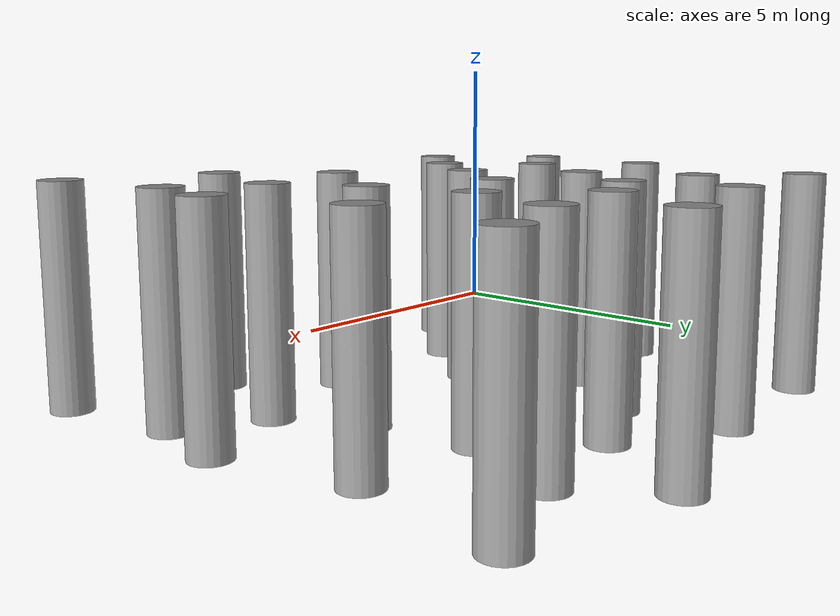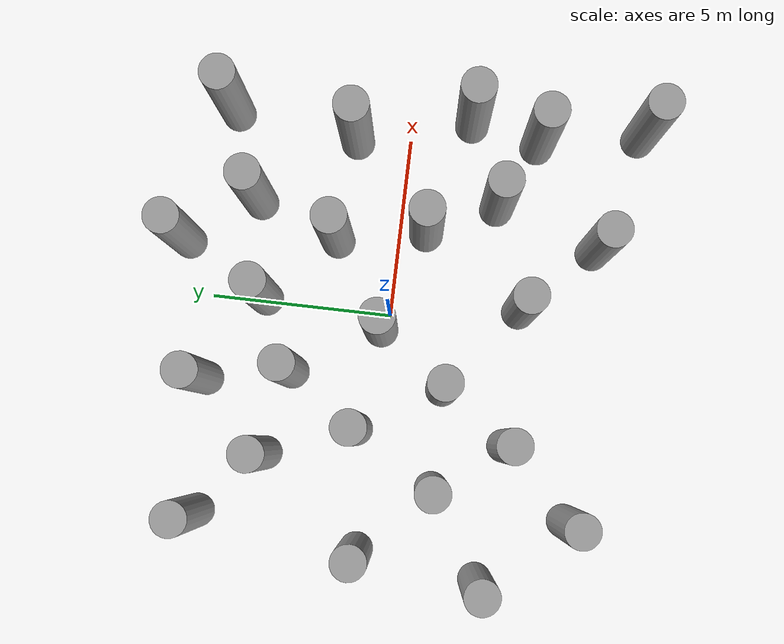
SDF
<?xml version='1.0'?>
<sdf version='1.7'>
  <model name='obstacle_complex'>
    <link name='link_0'>
      <inertial>
        <mass>5.29129</mass>
        <inertia>
          <ixx>12.6759</ixx>
          <ixy>0</ixy>
          <ixz>0</ixz>
          <iyy>12.6759</iyy>
          <iyz>0</iyz>
          <izz>0.661411</izz>
        </inertia>
        <pose>0 0 0 0 -0 0</pose>
      </inertial>
      <pose>-6.15295 5.08979 0 0 -0 0</pose>
      <visual name='visual'>
        <pose>0 0 0 0 -0 0</pose>
        <geometry>
          <cylinder>
            <radius>0.5</radius>
            <length>5.29126</length>
          </cylinder>
        </geometry>
        <material>
          <lighting>1</lighting>
          <script>
            <uri>file://media/materials/scripts/gazebo.material</uri>
            <name>Gazebo/Grey</name>
          </script>
          <shader type='pixel'/>
        </material>
        <transparency>0</transparency>
        <cast_shadows>1</cast_shadows>
      </visual>
      <collision name='collision'>
        <laser_retro>0</laser_retro>
        <max_contacts>10</max_contacts>
        <pose>0 0 0 0 -0 0</pose>
        <geometry>
          <cylinder>
            <radius>0.5</radius>
            <length>5.29126</length>
          </cylinder>
        </geometry>
        <surface>
          <friction>
            <ode>
              <mu>1</mu>
              <mu2>1</mu2>
              <fdir1>0 0 0</fdir1>
              <slip1>0</slip1>
              <slip2>0</slip2>
            </ode>
            <torsional>
              <coefficient>1</coefficient>
              <patch_radius>0</patch_radius>
              <surface_radius>0</surface_radius>
              <use_patch_radius>1</use_patch_radius>
              <ode>
                <slip>0</slip>
              </ode>
            </torsional>
          </friction>
          <bounce>
            <restitution_coefficient>0</restitution_coefficient>
            <threshold>1e+06</threshold>
          </bounce>
          <contact>
            <collide_without_contact>0</collide_without_contact>
            <collide_without_contact_bitmask>1</collide_without_contact_bitmask>
            <collide_bitmask>1</collide_bitmask>
            <ode>
              <soft_cfm>0</soft_cfm>
              <soft_erp>0.2</soft_erp>
              <kp>1e+13</kp>
              <kd>1</kd>
              <max_vel>0.01</max_vel>
              <min_depth>0</min_depth>
            </ode>
            <bullet>
              <split_impulse>1</split_impulse>
              <split_impulse_penetration_threshold>-0.01</split_impulse_penetration_threshold>
              <soft_cfm>0</soft_cfm>
              <soft_erp>0.2</soft_erp>
              <kp>1e+13</kp>
              <kd>1</kd>
            </bullet>
          </contact>
        </surface>
      </collision>
    </link>
    <link name='link_0_clone'>
      <inertial>
        <mass>5.29129</mass>
        <inertia>
          <ixx>12.6759</ixx>
          <ixy>0</ixy>
          <ixz>0</ixz>
          <iyy>12.6759</iyy>
          <iyz>0</iyz>
          <izz>0.661411</izz>
        </inertia>
        <pose>0 0 0 0 -0 0</pose>
      </inertial>
      <pose>-4.24123 3.2981 0 0 -0 0</pose>
      <visual name='visual'>
        <pose>0 0 0 0 -0 0</pose>
        <geometry>
          <cylinder>
            <radius>0.5</radius>
            <length>5.29126</length>
          </cylinder>
        </geometry>
        <material>
          <lighting>1</lighting>
          <script>
            <uri>file://media/materials/scripts/gazebo.material</uri>
            <name>Gazebo/Grey</name>
          </script>
          <shader type='pixel'/>
        </material>
        <transparency>0</transparency>
        <cast_shadows>1</cast_shadows>
      </visual>
      <collision name='collision'>
        <laser_retro>0</laser_retro>
        <max_contacts>10</max_contacts>
        <pose>0 0 0 0 -0 0</pose>
        <geometry>
          <cylinder>
            <radius>0.5</radius>
            <length>5.29126</length>
          </cylinder>
        </geometry>
        <surface>
          <friction>
            <ode>
              <mu>1</mu>
              <mu2>1</mu2>
              <fdir1>0 0 0</fdir1>
              <slip1>0</slip1>
              <slip2>0</slip2>
            </ode>
            <torsional>
              <coefficient>1</coefficient>
              <patch_radius>0</patch_radius>
              <surface_radius>0</surface_radius>
              <use_patch_radius>1</use_patch_radius>
              <ode>
                <slip>0</slip>
              </ode>
            </torsional>
          </friction>
          <bounce>
            <restitution_coefficient>0</restitution_coefficient>
            <threshold>1e+06</threshold>
          </bounce>
          <contact>
            <collide_without_contact>0</collide_without_contact>
            <collide_without_contact_bitmask>1</collide_without_contact_bitmask>
            <collide_bitmask>1</collide_bitmask>
            <ode>
              <soft_cfm>0</soft_cfm>
              <soft_erp>0.2</soft_erp>
              <kp>1e+13</kp>
              <kd>1</kd>
              <max_vel>0.01</max_vel>
              <min_depth>0</min_depth>
            </ode>
            <bullet>
              <split_impulse>1</split_impulse>
              <split_impulse_penetration_threshold>-0.01</split_impulse_penetration_threshold>
              <soft_cfm>0</soft_cfm>
              <soft_erp>0.2</soft_erp>
              <kp>1e+13</kp>
              <kd>1</kd>
            </bullet>
          </contact>
        </surface>
      </collision>
    </link>
    <link name='link_0_clone_0'>
      <inertial>
        <mass>5.29129</mass>
        <inertia>
          <ixx>12.6759</ixx>
          <ixy>0</ixy>
          <ixz>0</ixz>
          <iyy>12.6759</iyy>
          <iyz>0</iyz>
          <izz>0.661411</izz>
        </inertia>
        <pose>0 0 0 0 -0 0</pose>
      </inertial>
      <pose>-2.24123 5.2981 0 0 -0 0</pose>
      <visual name='visual'>
        <pose>0 0 0 0 -0 0</pose>
        <geometry>
          <cylinder>
            <radius>0.5</radius>
            <length>5.29126</length>
          </cylinder>
        </geometry>
        <material>
          <lighting>1</lighting>
          <script>
            <uri>file://media/materials/scripts/gazebo.material</uri>
            <name>Gazebo/Grey</name>
          </script>
          <shader type='pixel'/>
        </material>
        <transparency>0</transparency>
        <cast_shadows>1</cast_shadows>
      </visual>
      <collision name='collision'>
        <laser_retro>0</laser_retro>
        <max_contacts>10</max_contacts>
        <pose>0 0 0 0 -0 0</pose>
        <geometry>
          <cylinder>
            <radius>0.5</radius>
            <length>5.29126</length>
          </cylinder>
        </geometry>
        <surface>
          <friction>
            <ode>
              <mu>1</mu>
              <mu2>1</mu2>
              <fdir1>0 0 0</fdir1>
              <slip1>0</slip1>
              <slip2>0</slip2>
            </ode>
            <torsional>
              <coefficient>1</coefficient>
              <patch_radius>0</patch_radius>
              <surface_radius>0</surface_radius>
              <use_patch_radius>1</use_patch_radius>
              <ode>
                <slip>0</slip>
              </ode>
            </torsional>
          </friction>
          <bounce>
            <restitution_coefficient>0</restitution_coefficient>
            <threshold>1e+06</threshold>
          </bounce>
          <contact>
            <collide_without_contact>0</collide_without_contact>
            <collide_without_contact_bitmask>1</collide_without_contact_bitmask>
            <collide_bitmask>1</collide_bitmask>
            <ode>
              <soft_cfm>0</soft_cfm>
              <soft_erp>0.2</soft_erp>
              <kp>1e+13</kp>
              <kd>1</kd>
              <max_vel>0.01</max_vel>
              <min_depth>0</min_depth>
            </ode>
            <bullet>
              <split_impulse>1</split_impulse>
              <split_impulse_penetration_threshold>-0.01</split_impulse_penetration_threshold>
              <soft_cfm>0</soft_cfm>
              <soft_erp>0.2</soft_erp>
              <kp>1e+13</kp>
              <kd>1</kd>
            </bullet>
          </contact>
        </surface>
      </collision>
    </link>
    <link name='link_0_clone_1'>
      <inertial>
        <mass>5.29129</mass>
        <inertia>
          <ixx>12.6759</ixx>
          <ixy>0</ixy>
          <ixz>0</ixz>
          <iyy>12.6759</iyy>
          <iyz>0</iyz>
          <izz>0.661411</izz>
        </inertia>
        <pose>0 0 0 0 -0 0</pose>
      </inertial>
      <pose>-0.241233 0.298101 0 0 -0 0</pose>
      <visual name='visual'>
        <pose>0 0 0 0 -0 0</pose>
        <geometry>
          <cylinder>
            <radius>0.5</radius>
            <length>5.29126</length>
          </cylinder>
        </geometry>
        <material>
          <lighting>1</lighting>
          <script>
            <uri>file://media/materials/scripts/gazebo.material</uri>
            <name>Gazebo/Grey</name>
          </script>
          <shader type='pixel'/>
        </material>
        <transparency>0</transparency>
        <cast_shadows>1</cast_shadows>
      </visual>
      <collision name='collision'>
        <laser_retro>0</laser_retro>
        <max_contacts>10</max_contacts>
        <pose>0 0 0 0 -0 0</pose>
        <geometry>
          <cylinder>
            <radius>0.5</radius>
            <length>5.29126</length>
          </cylinder>
        </geometry>
        <surface>
          <friction>
            <ode>
              <mu>1</mu>
              <mu2>1</mu2>
              <fdir1>0 0 0</fdir1>
              <slip1>0</slip1>
              <slip2>0</slip2>
            </ode>
            <torsional>
              <coefficient>1</coefficient>
              <patch_radius>0</patch_radius>
              <surface_radius>0</surface_radius>
              <use_patch_radius>1</use_patch_radius>
              <ode>
                <slip>0</slip>
              </ode>
            </torsional>
          </friction>
          <bounce>
            <restitution_coefficient>0</restitution_coefficient>
            <threshold>1e+06</threshold>
          </bounce>
          <contact>
            <collide_without_contact>0</collide_without_contact>
            <collide_without_contact_bitmask>1</collide_without_contact_bitmask>
            <collide_bitmask>1</collide_bitmask>
            <ode>
              <soft_cfm>0</soft_cfm>
              <soft_erp>0.2</soft_erp>
              <kp>1e+13</kp>
              <kd>1</kd>
              <max_vel>0.01</max_vel>
              <min_depth>0</min_depth>
            </ode>
            <bullet>
              <split_impulse>1</split_impulse>
              <split_impulse_penetration_threshold>-0.01</split_impulse_penetration_threshold>
              <soft_cfm>0</soft_cfm>
              <soft_erp>0.2</soft_erp>
              <kp>1e+13</kp>
              <kd>1</kd>
            </bullet>
          </contact>
        </surface>
      </collision>
    </link>
    <link name='link_0_clone_10'>
      <inertial>
        <mass>5.29129</mass>
        <inertia>
          <ixx>12.6759</ixx>
          <ixy>0</ixy>
          <ixz>0</ixz>
          <iyy>12.6759</iyy>
          <iyz>0</iyz>
          <izz>0.661411</izz>
        </inertia>
        <pose>0 0 0 0 -0 0</pose>
      </inertial>
      <pose>-1.79235 -1.7019 0 0 -0 0</pose>
      <visual name='visual'>
        <pose>0 0 0 0 -0 0</pose>
        <geometry>
          <cylinder>
            <radius>0.5</radius>
            <length>5.29126</length>
          </cylinder>
        </geometry>
        <material>
          <lighting>1</lighting>
          <script>
            <uri>file://media/materials/scripts/gazebo.material</uri>
            <name>Gazebo/Grey</name>
          </script>
          <shader type='pixel'/>
        </material>
        <transparency>0</transparency>
        <cast_shadows>1</cast_shadows>
      </visual>
      <collision name='collision'>
        <laser_retro>0</laser_retro>
        <max_contacts>10</max_contacts>
        <pose>0 0 0 0 -0 0</pose>
        <geometry>
          <cylinder>
            <radius>0.5</radius>
            <length>5.29126</length>
          </cylinder>
        </geometry>
        <surface>
          <friction>
            <ode>
              <mu>1</mu>
              <mu2>1</mu2>
              <fdir1>0 0 0</fdir1>
              <slip1>0</slip1>
              <slip2>0</slip2>
            </ode>
            <torsional>
              <coefficient>1</coefficient>
              <patch_radius>0</patch_radius>
              <surface_radius>0</surface_radius>
              <use_patch_radius>1</use_patch_radius>
              <ode>
                <slip>0</slip>
              </ode>
            </torsional>
          </friction>
          <bounce>
            <restitution_coefficient>0</restitution_coefficient>
            <threshold>1e+06</threshold>
          </bounce>
          <contact>
            <collide_without_contact>0</collide_without_contact>
            <collide_without_contact_bitmask>1</collide_without_contact_bitmask>
            <collide_bitmask>1</collide_bitmask>
            <ode>
              <soft_cfm>0</soft_cfm>
              <soft_erp>0.2</soft_erp>
              <kp>1e+13</kp>
              <kd>1</kd>
              <max_vel>0.01</max_vel>
              <min_depth>0</min_depth>
            </ode>
            <bullet>
              <split_impulse>1</split_impulse>
              <split_impulse_penetration_threshold>-0.01</split_impulse_penetration_threshold>
              <soft_cfm>0</soft_cfm>
              <soft_erp>0.2</soft_erp>
              <kp>1e+13</kp>
              <kd>1</kd>
            </bullet>
          </contact>
        </surface>
      </collision>
    </link>
    <link name='link_0_clone_11'>
      <inertial>
        <mass>5.29129</mass>
        <inertia>
          <ixx>12.6759</ixx>
          <ixy>0</ixy>
          <ixz>0</ixz>
          <iyy>12.6759</iyy>
          <iyz>0</iyz>
          <izz>0.661411</izz>
        </inertia>
        <pose>0 0 0 0 -0 0</pose>
      </inertial>
      <pose>-3.24123 -3.7019 0 0 -0 0</pose>
      <visual name='visual'>
        <pose>0 0 0 0 -0 0</pose>
        <geometry>
          <cylinder>
            <radius>0.5</radius>
            <length>5.29126</length>
          </cylinder>
        </geometry>
        <material>
          <lighting>1</lighting>
          <script>
            <uri>file://media/materials/scripts/gazebo.material</uri>
            <name>Gazebo/Grey</name>
          </script>
          <shader type='pixel'/>
        </material>
        <transparency>0</transparency>
        <cast_shadows>1</cast_shadows>
      </visual>
      <collision name='collision'>
        <laser_retro>0</laser_retro>
        <max_contacts>10</max_contacts>
        <pose>0 0 0 0 -0 0</pose>
        <geometry>
          <cylinder>
            <radius>0.5</radius>
            <length>5.29126</length>
          </cylinder>
        </geometry>
        <surface>
          <friction>
            <ode>
              <mu>1</mu>
              <mu2>1</mu2>
              <fdir1>0 0 0</fdir1>
              <slip1>0</slip1>
              <slip2>0</slip2>
            </ode>
            <torsional>
              <coefficient>1</coefficient>
              <patch_radius>0</patch_radius>
              <surface_radius>0</surface_radius>
              <use_patch_radius>1</use_patch_radius>
              <ode>
                <slip>0</slip>
              </ode>
            </torsional>
          </friction>
          <bounce>
            <restitution_coefficient>0</restitution_coefficient>
            <threshold>1e+06</threshold>
          </bounce>
          <contact>
            <collide_without_contact>0</collide_without_contact>
            <collide_without_contact_bitmask>1</collide_without_contact_bitmask>
            <collide_bitmask>1</collide_bitmask>
            <ode>
              <soft_cfm>0</soft_cfm>
              <soft_erp>0.2</soft_erp>
              <kp>1e+13</kp>
              <kd>1</kd>
              <max_vel>0.01</max_vel>
              <min_depth>0</min_depth>
            </ode>
            <bullet>
              <split_impulse>1</split_impulse>
              <split_impulse_penetration_threshold>-0.01</split_impulse_penetration_threshold>
              <soft_cfm>0</soft_cfm>
              <soft_erp>0.2</soft_erp>
              <kp>1e+13</kp>
              <kd>1</kd>
            </bullet>
          </contact>
        </surface>
      </collision>
    </link>
    <link name='link_0_clone_12'>
      <inertial>
        <mass>5.29129</mass>
        <inertia>
          <ixx>12.6759</ixx>
          <ixy>0</ixy>
          <ixz>0</ixz>
          <iyy>12.6759</iyy>
          <iyz>0</iyz>
          <izz>0.661411</izz>
        </inertia>
        <pose>0 0 0 0 -0 0</pose>
      </inertial>
      <pose>0.758767 -3.7019 0 0 -0 0</pose>
      <visual name='visual'>
        <pose>0 0 0 0 -0 0</pose>
        <geometry>
          <cylinder>
            <radius>0.5</radius>
            <length>5.29126</length>
          </cylinder>
        </geometry>
        <material>
          <lighting>1</lighting>
          <script>
            <uri>file://media/materials/scripts/gazebo.material</uri>
            <name>Gazebo/Grey</name>
          </script>
          <shader type='pixel'/>
        </material>
        <transparency>0</transparency>
        <cast_shadows>1</cast_shadows>
      </visual>
      <collision name='collision'>
        <laser_retro>0</laser_retro>
        <max_contacts>10</max_contacts>
        <pose>0 0 0 0 -0 0</pose>
        <geometry>
          <cylinder>
            <radius>0.5</radius>
            <length>5.29126</length>
          </cylinder>
        </geometry>
        <surface>
          <friction>
            <ode>
              <mu>1</mu>
              <mu2>1</mu2>
              <fdir1>0 0 0</fdir1>
              <slip1>0</slip1>
              <slip2>0</slip2>
            </ode>
            <torsional>
              <coefficient>1</coefficient>
              <patch_radius>0</patch_radius>
              <surface_radius>0</surface_radius>
              <use_patch_radius>1</use_patch_radius>
              <ode>
                <slip>0</slip>
              </ode>
            </torsional>
          </friction>
          <bounce>
            <restitution_coefficient>0</restitution_coefficient>
            <threshold>1e+06</threshold>
          </bounce>
          <contact>
            <collide_without_contact>0</collide_without_contact>
            <collide_without_contact_bitmask>1</collide_without_contact_bitmask>
            <collide_bitmask>1</collide_bitmask>
            <ode>
              <soft_cfm>0</soft_cfm>
              <soft_erp>0.2</soft_erp>
              <kp>1e+13</kp>
              <kd>1</kd>
              <max_vel>0.01</max_vel>
              <min_depth>0</min_depth>
            </ode>
            <bullet>
              <split_impulse>1</split_impulse>
              <split_impulse_penetration_threshold>-0.01</split_impulse_penetration_threshold>
              <soft_cfm>0</soft_cfm>
              <soft_erp>0.2</soft_erp>
              <kp>1e+13</kp>
              <kd>1</kd>
            </bullet>
          </contact>
        </surface>
      </collision>
    </link>
    <link name='link_0_clone_13'>
      <inertial>
        <mass>5.29129</mass>
        <inertia>
          <ixx>12.6759</ixx>
          <ixy>0</ixy>
          <ixz>0</ixz>
          <iyy>12.6759</iyy>
          <iyz>0</iyz>
          <izz>0.661411</izz>
        </inertia>
        <pose>0 0 0 0 -0 0</pose>
      </inertial>
      <pose>2.75877 -0.701899 0 0 -0 0</pose>
      <visual name='visual'>
        <pose>0 0 0 0 -0 0</pose>
        <geometry>
          <cylinder>
            <radius>0.5</radius>
            <length>5.29126</length>
          </cylinder>
        </geometry>
        <material>
          <lighting>1</lighting>
          <script>
            <uri>file://media/materials/scripts/gazebo.material</uri>
            <name>Gazebo/Grey</name>
          </script>
          <shader type='pixel'/>
        </material>
        <transparency>0</transparency>
        <cast_shadows>1</cast_shadows>
      </visual>
      <collision name='collision'>
        <laser_retro>0</laser_retro>
        <max_contacts>10</max_contacts>
        <pose>0 0 0 0 -0 0</pose>
        <geometry>
          <cylinder>
            <radius>0.5</radius>
            <length>5.29126</length>
          </cylinder>
        </geometry>
        <surface>
          <friction>
            <ode>
              <mu>1</mu>
              <mu2>1</mu2>
              <fdir1>0 0 0</fdir1>
              <slip1>0</slip1>
              <slip2>0</slip2>
            </ode>
            <torsional>
              <coefficient>1</coefficient>
              <patch_radius>0</patch_radius>
              <surface_radius>0</surface_radius>
              <use_patch_radius>1</use_patch_radius>
              <ode>
                <slip>0</slip>
              </ode>
            </torsional>
          </friction>
          <bounce>
            <restitution_coefficient>0</restitution_coefficient>
            <threshold>1e+06</threshold>
          </bounce>
          <contact>
            <collide_without_contact>0</collide_without_contact>
            <collide_without_contact_bitmask>1</collide_without_contact_bitmask>
            <collide_bitmask>1</collide_bitmask>
            <ode>
              <soft_cfm>0</soft_cfm>
              <soft_erp>0.2</soft_erp>
              <kp>1e+13</kp>
              <kd>1</kd>
              <max_vel>0.01</max_vel>
              <min_depth>0</min_depth>
            </ode>
            <bullet>
              <split_impulse>1</split_impulse>
              <split_impulse_penetration_threshold>-0.01</split_impulse_penetration_threshold>
              <soft_cfm>0</soft_cfm>
              <soft_erp>0.2</soft_erp>
              <kp>1e+13</kp>
              <kd>1</kd>
            </bullet>
          </contact>
        </surface>
      </collision>
    </link>
    <link name='link_0_clone_14'>
      <inertial>
        <mass>5.29129</mass>
        <inertia>
          <ixx>12.6759</ixx>
          <ixy>0</ixy>
          <ixz>0</ixz>
          <iyy>12.6759</iyy>
          <iyz>0</iyz>
          <izz>0.661411</izz>
        </inertia>
        <pose>0 0 0 0 -0 0</pose>
      </inertial>
      <pose>5.30897 1.64469 0 0 -0 0</pose>
      <visual name='visual'>
        <pose>0 0 0 0 -0 0</pose>
        <geometry>
          <cylinder>
            <radius>0.5</radius>
            <length>5.29126</length>
          </cylinder>
        </geometry>
        <material>
          <lighting>1</lighting>
          <script>
            <uri>file://media/materials/scripts/gazebo.material</uri>
            <name>Gazebo/Grey</name>
          </script>
          <shader type='pixel'/>
        </material>
        <transparency>0</transparency>
        <cast_shadows>1</cast_shadows>
      </visual>
      <collision name='collision'>
        <laser_retro>0</laser_retro>
        <max_contacts>10</max_contacts>
        <pose>0 0 0 0 -0 0</pose>
        <geometry>
          <cylinder>
            <radius>0.5</radius>
            <length>5.29126</length>
          </cylinder>
        </geometry>
        <surface>
          <friction>
            <ode>
              <mu>1</mu>
              <mu2>1</mu2>
              <fdir1>0 0 0</fdir1>
              <slip1>0</slip1>
              <slip2>0</slip2>
            </ode>
            <torsional>
              <coefficient>1</coefficient>
              <patch_radius>0</patch_radius>
              <surface_radius>0</surface_radius>
              <use_patch_radius>1</use_patch_radius>
              <ode>
                <slip>0</slip>
              </ode>
            </torsional>
          </friction>
          <bounce>
            <restitution_coefficient>0</restitution_coefficient>
            <threshold>1e+06</threshold>
          </bounce>
          <contact>
            <collide_without_contact>0</collide_without_contact>
            <collide_without_contact_bitmask>1</collide_without_contact_bitmask>
            <collide_bitmask>1</collide_bitmask>
            <ode>
              <soft_cfm>0</soft_cfm>
              <soft_erp>0.2</soft_erp>
              <kp>1e+13</kp>
              <kd>1</kd>
              <max_vel>0.01</max_vel>
              <min_depth>0</min_depth>
            </ode>
            <bullet>
              <split_impulse>1</split_impulse>
              <split_impulse_penetration_threshold>-0.01</split_impulse_penetration_threshold>
              <soft_cfm>0</soft_cfm>
              <soft_erp>0.2</soft_erp>
              <kp>1e+13</kp>
              <kd>1</kd>
            </bullet>
          </contact>
        </surface>
      </collision>
    </link>
    <link name='link_0_clone_15'>
      <inertial>
        <mass>5.29129</mass>
        <inertia>
          <ixx>12.6759</ixx>
          <ixy>0</ixy>
          <ixz>0</ixz>
          <iyy>12.6759</iyy>
          <iyz>0</iyz>
          <izz>0.661411</izz>
        </inertia>
        <pose>0 0 0 0 -0 0</pose>
      </inertial>
      <pose>2.26622 1.88148 0 0 -0 0</pose>
      <visual name='visual'>
        <pose>0 0 0 0 -0 0</pose>
        <geometry>
          <cylinder>
            <radius>0.5</radius>
            <length>5.29126</length>
          </cylinder>
        </geometry>
        <material>
          <lighting>1</lighting>
          <script>
            <uri>file://media/materials/scripts/gazebo.material</uri>
            <name>Gazebo/Grey</name>
          </script>
          <shader type='pixel'/>
        </material>
        <transparency>0</transparency>
        <cast_shadows>1</cast_shadows>
      </visual>
      <collision name='collision'>
        <laser_retro>0</laser_retro>
        <max_contacts>10</max_contacts>
        <pose>0 0 0 0 -0 0</pose>
        <geometry>
          <cylinder>
            <radius>0.5</radius>
            <length>5.29126</length>
          </cylinder>
        </geometry>
        <surface>
          <friction>
            <ode>
              <mu>1</mu>
              <mu2>1</mu2>
              <fdir1>0 0 0</fdir1>
              <slip1>0</slip1>
              <slip2>0</slip2>
            </ode>
            <torsional>
              <coefficient>1</coefficient>
              <patch_radius>0</patch_radius>
              <surface_radius>0</surface_radius>
              <use_patch_radius>1</use_patch_radius>
              <ode>
                <slip>0</slip>
              </ode>
            </torsional>
          </friction>
          <bounce>
            <restitution_coefficient>0</restitution_coefficient>
            <threshold>1e+06</threshold>
          </bounce>
          <contact>
            <collide_without_contact>0</collide_without_contact>
            <collide_without_contact_bitmask>1</collide_without_contact_bitmask>
            <collide_bitmask>1</collide_bitmask>
            <ode>
              <soft_cfm>0</soft_cfm>
              <soft_erp>0.2</soft_erp>
              <kp>1e+13</kp>
              <kd>1</kd>
              <max_vel>0.01</max_vel>
              <min_depth>0</min_depth>
            </ode>
            <bullet>
              <split_impulse>1</split_impulse>
              <split_impulse_penetration_threshold>-0.01</split_impulse_penetration_threshold>
              <soft_cfm>0</soft_cfm>
              <soft_erp>0.2</soft_erp>
              <kp>1e+13</kp>
              <kd>1</kd>
            </bullet>
          </contact>
        </surface>
      </collision>
    </link>
    <link name='link_0_clone_16'>
      <inertial>
        <mass>5.29129</mass>
        <inertia>
          <ixx>12.6759</ixx>
          <ixy>0</ixy>
          <ixz>0</ixz>
          <iyy>12.6759</iyy>
          <iyz>0</iyz>
          <izz>0.661411</izz>
        </inertia>
        <pose>0 0 0 0 -0 0</pose>
      </inertial>
      <pose>6.19656 -1.7019 0 0 -0 0</pose>
      <visual name='visual'>
        <pose>0 0 0 0 -0 0</pose>
        <geometry>
          <cylinder>
            <radius>0.5</radius>
            <length>5.29126</length>
          </cylinder>
        </geometry>
        <material>
          <lighting>1</lighting>
          <script>
            <uri>file://media/materials/scripts/gazebo.material</uri>
            <name>Gazebo/Grey</name>
          </script>
          <shader type='pixel'/>
        </material>
        <transparency>0</transparency>
        <cast_shadows>1</cast_shadows>
      </visual>
      <collision name='collision'>
        <laser_retro>0</laser_retro>
        <max_contacts>10</max_contacts>
        <pose>0 0 0 0 -0 0</pose>
        <geometry>
          <cylinder>
            <radius>0.5</radius>
            <length>5.29126</length>
          </cylinder>
        </geometry>
        <surface>
          <friction>
            <ode>
              <mu>1</mu>
              <mu2>1</mu2>
              <fdir1>0 0 0</fdir1>
              <slip1>0</slip1>
              <slip2>0</slip2>
            </ode>
            <torsional>
              <coefficient>1</coefficient>
              <patch_radius>0</patch_radius>
              <surface_radius>0</surface_radius>
              <use_patch_radius>1</use_patch_radius>
              <ode>
                <slip>0</slip>
              </ode>
            </torsional>
          </friction>
          <bounce>
            <restitution_coefficient>0</restitution_coefficient>
            <threshold>1e+06</threshold>
          </bounce>
          <contact>
            <collide_without_contact>0</collide_without_contact>
            <collide_without_contact_bitmask>1</collide_without_contact_bitmask>
            <collide_bitmask>1</collide_bitmask>
            <ode>
              <soft_cfm>0</soft_cfm>
              <soft_erp>0.2</soft_erp>
              <kp>1e+13</kp>
              <kd>1</kd>
              <max_vel>0.01</max_vel>
              <min_depth>0</min_depth>
            </ode>
            <bullet>
              <split_impulse>1</split_impulse>
              <split_impulse_penetration_threshold>-0.01</split_impulse_penetration_threshold>
              <soft_cfm>0</soft_cfm>
              <soft_erp>0.2</soft_erp>
              <kp>1e+13</kp>
              <kd>1</kd>
            </bullet>
          </contact>
        </surface>
      </collision>
    </link>
    <link name='link_0_clone_17'>
      <inertial>
        <mass>5.29129</mass>
        <inertia>
          <ixx>12.6759</ixx>
          <ixy>0</ixy>
          <ixz>0</ixz>
          <iyy>12.6759</iyy>
          <iyz>0</iyz>
          <izz>0.661411</izz>
        </inertia>
        <pose>0 0 0 0 -0 0</pose>
      </inertial>
      <pose>3.75877 -2.7019 0 0 -0 0</pose>
      <visual name='visual'>
        <pose>0 0 0 0 -0 0</pose>
        <geometry>
          <cylinder>
            <radius>0.5</radius>
            <length>5.29126</length>
          </cylinder>
        </geometry>
        <material>
          <lighting>1</lighting>
          <script>
            <uri>file://media/materials/scripts/gazebo.material</uri>
            <name>Gazebo/Grey</name>
          </script>
          <shader type='pixel'/>
        </material>
        <transparency>0</transparency>
        <cast_shadows>1</cast_shadows>
      </visual>
      <collision name='collision'>
        <laser_retro>0</laser_retro>
        <max_contacts>10</max_contacts>
        <pose>0 0 0 0 -0 0</pose>
        <geometry>
          <cylinder>
            <radius>0.5</radius>
            <length>5.29126</length>
          </cylinder>
        </geometry>
        <surface>
          <friction>
            <ode>
              <mu>1</mu>
              <mu2>1</mu2>
              <fdir1>0 0 0</fdir1>
              <slip1>0</slip1>
              <slip2>0</slip2>
            </ode>
            <torsional>
              <coefficient>1</coefficient>
              <patch_radius>0</patch_radius>
              <surface_radius>0</surface_radius>
              <use_patch_radius>1</use_patch_radius>
              <ode>
                <slip>0</slip>
              </ode>
            </torsional>
          </friction>
          <bounce>
            <restitution_coefficient>0</restitution_coefficient>
            <threshold>1e+06</threshold>
          </bounce>
          <contact>
            <collide_without_contact>0</collide_without_contact>
            <collide_without_contact_bitmask>1</collide_without_contact_bitmask>
            <collide_bitmask>1</collide_bitmask>
            <ode>
              <soft_cfm>0</soft_cfm>
              <soft_erp>0.2</soft_erp>
              <kp>1e+13</kp>
              <kd>1</kd>
              <max_vel>0.01</max_vel>
              <min_depth>0</min_depth>
            </ode>
            <bullet>
              <split_impulse>1</split_impulse>
              <split_impulse_penetration_threshold>-0.01</split_impulse_penetration_threshold>
              <soft_cfm>0</soft_cfm>
              <soft_erp>0.2</soft_erp>
              <kp>1e+13</kp>
              <kd>1</kd>
            </bullet>
          </contact>
        </surface>
      </collision>
    </link>
    <link name='link_0_clone_18'>
      <inertial>
        <mass>5.29129</mass>
        <inertia>
          <ixx>12.6759</ixx>
          <ixy>0</ixy>
          <ixz>0</ixz>
          <iyy>12.6759</iyy>
          <iyz>0</iyz>
          <izz>0.661411</izz>
        </inertia>
        <pose>0 0 0 0 -0 0</pose>
      </inertial>
      <pose>5.75877 -3.7019 0 0 -0 0</pose>
      <visual name='visual'>
        <pose>0 0 0 0 -0 0</pose>
        <geometry>
          <cylinder>
            <radius>0.5</radius>
            <length>5.29126</length>
          </cylinder>
        </geometry>
        <material>
          <lighting>1</lighting>
          <script>
            <uri>file://media/materials/scripts/gazebo.material</uri>
            <name>Gazebo/Grey</name>
          </script>
          <shader type='pixel'/>
        </material>
        <transparency>0</transparency>
        <cast_shadows>1</cast_shadows>
      </visual>
      <collision name='collision'>
        <laser_retro>0</laser_retro>
        <max_contacts>10</max_contacts>
        <pose>0 0 0 0 -0 0</pose>
        <geometry>
          <cylinder>
            <radius>0.5</radius>
            <length>5.29126</length>
          </cylinder>
        </geometry>
        <surface>
          <friction>
            <ode>
              <mu>1</mu>
              <mu2>1</mu2>
              <fdir1>0 0 0</fdir1>
              <slip1>0</slip1>
              <slip2>0</slip2>
            </ode>
            <torsional>
              <coefficient>1</coefficient>
              <patch_radius>0</patch_radius>
              <surface_radius>0</surface_radius>
              <use_patch_radius>1</use_patch_radius>
              <ode>
                <slip>0</slip>
              </ode>
            </torsional>
          </friction>
          <bounce>
            <restitution_coefficient>0</restitution_coefficient>
            <threshold>1e+06</threshold>
          </bounce>
          <contact>
            <collide_without_contact>0</collide_without_contact>
            <collide_without_contact_bitmask>1</collide_without_contact_bitmask>
            <collide_bitmask>1</collide_bitmask>
            <ode>
              <soft_cfm>0</soft_cfm>
              <soft_erp>0.2</soft_erp>
              <kp>1e+13</kp>
              <kd>1</kd>
              <max_vel>0.01</max_vel>
              <min_depth>0</min_depth>
            </ode>
            <bullet>
              <split_impulse>1</split_impulse>
              <split_impulse_penetration_threshold>-0.01</split_impulse_penetration_threshold>
              <soft_cfm>0</soft_cfm>
              <soft_erp>0.2</soft_erp>
              <kp>1e+13</kp>
              <kd>1</kd>
            </bullet>
          </contact>
        </surface>
      </collision>
    </link>
    <link name='link_0_clone_19'>
      <inertial>
        <mass>5.29129</mass>
        <inertia>
          <ixx>12.6759</ixx>
          <ixy>0</ixy>
          <ixz>0</ixz>
          <iyy>12.6759</iyy>
          <iyz>0</iyz>
          <izz>0.661411</izz>
        </inertia>
        <pose>0 0 0 0 -0 0</pose>
      </inertial>
      <pose>1.75877 6.2981 0 0 -0 0</pose>
      <visual name='visual'>
        <pose>0 0 0 0 -0 0</pose>
        <geometry>
          <cylinder>
            <radius>0.5</radius>
            <length>5.29126</length>
          </cylinder>
        </geometry>
        <material>
          <lighting>1</lighting>
          <script>
            <uri>file://media/materials/scripts/gazebo.material</uri>
            <name>Gazebo/Grey</name>
          </script>
          <shader type='pixel'/>
        </material>
        <transparency>0</transparency>
        <cast_shadows>1</cast_shadows>
      </visual>
      <collision name='collision'>
        <laser_retro>0</laser_retro>
        <max_contacts>10</max_contacts>
        <pose>0 0 0 0 -0 0</pose>
        <geometry>
          <cylinder>
            <radius>0.5</radius>
            <length>5.29126</length>
          </cylinder>
        </geometry>
        <surface>
          <friction>
            <ode>
              <mu>1</mu>
              <mu2>1</mu2>
              <fdir1>0 0 0</fdir1>
              <slip1>0</slip1>
              <slip2>0</slip2>
            </ode>
            <torsional>
              <coefficient>1</coefficient>
              <patch_radius>0</patch_radius>
              <surface_radius>0</surface_radius>
              <use_patch_radius>1</use_patch_radius>
              <ode>
                <slip>0</slip>
              </ode>
            </torsional>
          </friction>
          <bounce>
            <restitution_coefficient>0</restitution_coefficient>
            <threshold>1e+06</threshold>
          </bounce>
          <contact>
            <collide_without_contact>0</collide_without_contact>
            <collide_without_contact_bitmask>1</collide_without_contact_bitmask>
            <collide_bitmask>1</collide_bitmask>
            <ode>
              <soft_cfm>0</soft_cfm>
              <soft_erp>0.2</soft_erp>
              <kp>1e+13</kp>
              <kd>1</kd>
              <max_vel>0.01</max_vel>
              <min_depth>0</min_depth>
            </ode>
            <bullet>
              <split_impulse>1</split_impulse>
              <split_impulse_penetration_threshold>-0.01</split_impulse_penetration_threshold>
              <soft_cfm>0</soft_cfm>
              <soft_erp>0.2</soft_erp>
              <kp>1e+13</kp>
              <kd>1</kd>
            </bullet>
          </contact>
        </surface>
      </collision>
    </link>
    <link name='link_0_clone_2'>
      <inertial>
        <mass>5.29129</mass>
        <inertia>
          <ixx>12.6759</ixx>
          <ixy>0</ixy>
          <ixz>0</ixz>
          <iyy>12.6759</iyy>
          <iyz>0</iyz>
          <izz>0.661411</izz>
        </inertia>
        <pose>0 0 0 0 -0 0</pose>
      </inertial>
      <pose>5.75877 5.2981 0 0 -0 0</pose>
      <visual name='visual'>
        <pose>0 0 0 0 -0 0</pose>
        <geometry>
          <cylinder>
            <radius>0.5</radius>
            <length>5.29126</length>
          </cylinder>
        </geometry>
        <material>
          <lighting>1</lighting>
          <script>
            <uri>file://media/materials/scripts/gazebo.material</uri>
            <name>Gazebo/Grey</name>
          </script>
          <shader type='pixel'/>
        </material>
        <transparency>0</transparency>
        <cast_shadows>1</cast_shadows>
      </visual>
      <collision name='collision'>
        <laser_retro>0</laser_retro>
        <max_contacts>10</max_contacts>
        <pose>0 0 0 0 -0 0</pose>
        <geometry>
          <cylinder>
            <radius>0.5</radius>
            <length>5.29126</length>
          </cylinder>
        </geometry>
        <surface>
          <friction>
            <ode>
              <mu>1</mu>
              <mu2>1</mu2>
              <fdir1>0 0 0</fdir1>
              <slip1>0</slip1>
              <slip2>0</slip2>
            </ode>
            <torsional>
              <coefficient>1</coefficient>
              <patch_radius>0</patch_radius>
              <surface_radius>0</surface_radius>
              <use_patch_radius>1</use_patch_radius>
              <ode>
                <slip>0</slip>
              </ode>
            </torsional>
          </friction>
          <bounce>
            <restitution_coefficient>0</restitution_coefficient>
            <threshold>1e+06</threshold>
          </bounce>
          <contact>
            <collide_without_contact>0</collide_without_contact>
            <collide_without_contact_bitmask>1</collide_without_contact_bitmask>
            <collide_bitmask>1</collide_bitmask>
            <ode>
              <soft_cfm>0</soft_cfm>
              <soft_erp>0.2</soft_erp>
              <kp>1e+13</kp>
              <kd>1</kd>
              <max_vel>0.01</max_vel>
              <min_depth>0</min_depth>
            </ode>
            <bullet>
              <split_impulse>1</split_impulse>
              <split_impulse_penetration_threshold>-0.01</split_impulse_penetration_threshold>
              <soft_cfm>0</soft_cfm>
              <soft_erp>0.2</soft_erp>
              <kp>1e+13</kp>
              <kd>1</kd>
            </bullet>
          </contact>
        </surface>
      </collision>
    </link>
    <link name='link_0_clone_20'>
      <inertial>
        <mass>5.29129</mass>
        <inertia>
          <ixx>12.6759</ixx>
          <ixy>0</ixy>
          <ixz>0</ixz>
          <iyy>12.6759</iyy>
          <iyz>0</iyz>
          <izz>0.661411</izz>
        </inertia>
        <pose>0 0 0 0 -0 0</pose>
      </inertial>
      <pose>-5.24123 -5.7019 0 0 -0 0</pose>
      <visual name='visual'>
        <pose>0 0 0 0 -0 0</pose>
        <geometry>
          <cylinder>
            <radius>0.5</radius>
            <length>5.29126</length>
          </cylinder>
        </geometry>
        <material>
          <lighting>1</lighting>
          <script>
            <uri>file://media/materials/scripts/gazebo.material</uri>
            <name>Gazebo/Grey</name>
          </script>
          <shader type='pixel'/>
        </material>
        <transparency>0</transparency>
        <cast_shadows>1</cast_shadows>
      </visual>
      <collision name='collision'>
        <laser_retro>0</laser_retro>
        <max_contacts>10</max_contacts>
        <pose>0 0 0 0 -0 0</pose>
        <geometry>
          <cylinder>
            <radius>0.5</radius>
            <length>5.29126</length>
          </cylinder>
        </geometry>
        <surface>
          <friction>
            <ode>
              <mu>1</mu>
              <mu2>1</mu2>
              <fdir1>0 0 0</fdir1>
              <slip1>0</slip1>
              <slip2>0</slip2>
            </ode>
            <torsional>
              <coefficient>1</coefficient>
              <patch_radius>0</patch_radius>
              <surface_radius>0</surface_radius>
              <use_patch_radius>1</use_patch_radius>
              <ode>
                <slip>0</slip>
              </ode>
            </torsional>
          </friction>
          <bounce>
            <restitution_coefficient>0</restitution_coefficient>
            <threshold>1e+06</threshold>
          </bounce>
          <contact>
            <collide_without_contact>0</collide_without_contact>
            <collide_without_contact_bitmask>1</collide_without_contact_bitmask>
            <collide_bitmask>1</collide_bitmask>
            <ode>
              <soft_cfm>0</soft_cfm>
              <soft_erp>0.2</soft_erp>
              <kp>1e+13</kp>
              <kd>1</kd>
              <max_vel>0.01</max_vel>
              <min_depth>0</min_depth>
            </ode>
            <bullet>
              <split_impulse>1</split_impulse>
              <split_impulse_penetration_threshold>-0.01</split_impulse_penetration_threshold>
              <soft_cfm>0</soft_cfm>
              <soft_erp>0.2</soft_erp>
              <kp>1e+13</kp>
              <kd>1</kd>
            </bullet>
          </contact>
        </surface>
      </collision>
    </link>
    <link name='link_0_clone_21'>
      <inertial>
        <mass>5.29129</mass>
        <inertia>
          <ixx>12.6759</ixx>
          <ixy>0</ixy>
          <ixz>0</ixz>
          <iyy>12.6759</iyy>
          <iyz>0</iyz>
          <izz>0.661411</izz>
        </inertia>
        <pose>0 0 0 0 -0 0</pose>
      </inertial>
      <pose>2.75877 -5.7019 0 0 -0 0</pose>
      <visual name='visual'>
        <pose>0 0 0 0 -0 0</pose>
        <geometry>
          <cylinder>
            <radius>0.5</radius>
            <length>5.29126</length>
          </cylinder>
        </geometry>
        <material>
          <lighting>1</lighting>
          <script>
            <uri>file://media/materials/scripts/gazebo.material</uri>
            <name>Gazebo/Grey</name>
          </script>
          <shader type='pixel'/>
        </material>
        <transparency>0</transparency>
        <cast_shadows>1</cast_shadows>
      </visual>
      <collision name='collision'>
        <laser_retro>0</laser_retro>
        <max_contacts>10</max_contacts>
        <pose>0 0 0 0 -0 0</pose>
        <geometry>
          <cylinder>
            <radius>0.5</radius>
            <length>5.29126</length>
          </cylinder>
        </geometry>
        <surface>
          <friction>
            <ode>
              <mu>1</mu>
              <mu2>1</mu2>
              <fdir1>0 0 0</fdir1>
              <slip1>0</slip1>
              <slip2>0</slip2>
            </ode>
            <torsional>
              <coefficient>1</coefficient>
              <patch_radius>0</patch_radius>
              <surface_radius>0</surface_radius>
              <use_patch_radius>1</use_patch_radius>
              <ode>
                <slip>0</slip>
              </ode>
            </torsional>
          </friction>
          <bounce>
            <restitution_coefficient>0</restitution_coefficient>
            <threshold>1e+06</threshold>
          </bounce>
          <contact>
            <collide_without_contact>0</collide_without_contact>
            <collide_without_contact_bitmask>1</collide_without_contact_bitmask>
            <collide_bitmask>1</collide_bitmask>
            <ode>
              <soft_cfm>0</soft_cfm>
              <soft_erp>0.2</soft_erp>
              <kp>1e+13</kp>
              <kd>1</kd>
              <max_vel>0.01</max_vel>
              <min_depth>0</min_depth>
            </ode>
            <bullet>
              <split_impulse>1</split_impulse>
              <split_impulse_penetration_threshold>-0.01</split_impulse_penetration_threshold>
              <soft_cfm>0</soft_cfm>
              <soft_erp>0.2</soft_erp>
              <kp>1e+13</kp>
              <kd>1</kd>
            </bullet>
          </contact>
        </surface>
      </collision>
    </link>
    <link name='link_0_clone_22'>
      <inertial>
        <mass>5.29129</mass>
        <inertia>
          <ixx>12.6759</ixx>
          <ixy>0</ixy>
          <ixz>0</ixz>
          <iyy>12.6759</iyy>
          <iyz>0</iyz>
          <izz>0.661411</izz>
        </inertia>
        <pose>0 0 0 0 -0 0</pose>
      </inertial>
      <pose>6.31606 -6.7019 0 0 -0 0</pose>
      <visual name='visual'>
        <pose>0 0 0 0 -0 0</pose>
        <geometry>
          <cylinder>
            <radius>0.5</radius>
            <length>5.29126</length>
          </cylinder>
        </geometry>
        <material>
          <lighting>1</lighting>
          <script>
            <uri>file://media/materials/scripts/gazebo.material</uri>
            <name>Gazebo/Grey</name>
          </script>
          <shader type='pixel'/>
        </material>
        <transparency>0</transparency>
        <cast_shadows>1</cast_shadows>
      </visual>
      <collision name='collision'>
        <laser_retro>0</laser_retro>
        <max_contacts>10</max_contacts>
        <pose>0 0 0 0 -0 0</pose>
        <geometry>
          <cylinder>
            <radius>0.5</radius>
            <length>5.29126</length>
          </cylinder>
        </geometry>
        <surface>
          <friction>
            <ode>
              <mu>1</mu>
              <mu2>1</mu2>
              <fdir1>0 0 0</fdir1>
              <slip1>0</slip1>
              <slip2>0</slip2>
            </ode>
            <torsional>
              <coefficient>1</coefficient>
              <patch_radius>0</patch_radius>
              <surface_radius>0</surface_radius>
              <use_patch_radius>1</use_patch_radius>
              <ode>
                <slip>0</slip>
              </ode>
            </torsional>
          </friction>
          <bounce>
            <restitution_coefficient>0</restitution_coefficient>
            <threshold>1e+06</threshold>
          </bounce>
          <contact>
            <collide_without_contact>0</collide_without_contact>
            <collide_without_contact_bitmask>1</collide_without_contact_bitmask>
            <collide_bitmask>1</collide_bitmask>
            <ode>
              <soft_cfm>0</soft_cfm>
              <soft_erp>0.2</soft_erp>
              <kp>1e+13</kp>
              <kd>1</kd>
              <max_vel>0.01</max_vel>
              <min_depth>0</min_depth>
            </ode>
            <bullet>
              <split_impulse>1</split_impulse>
              <split_impulse_penetration_threshold>-0.01</split_impulse_penetration_threshold>
              <soft_cfm>0</soft_cfm>
              <soft_erp>0.2</soft_erp>
              <kp>1e+13</kp>
              <kd>1</kd>
            </bullet>
          </contact>
        </surface>
      </collision>
    </link>
    <link name='link_0_clone_3'>
      <inertial>
        <mass>5.29129</mass>
        <inertia>
          <ixx>12.6759</ixx>
          <ixy>0</ixy>
          <ixz>0</ixz>
          <iyy>12.6759</iyy>
          <iyz>0</iyz>
          <izz>0.661411</izz>
        </inertia>
        <pose>0 0 0 0 -0 0</pose>
      </inertial>
      <pose>0.31578 3.80553 0 0 -0 0</pose>
      <visual name='visual'>
        <pose>0 0 0 0 -0 0</pose>
        <geometry>
          <cylinder>
            <radius>0.5</radius>
            <length>5.29126</length>
          </cylinder>
        </geometry>
        <material>
          <lighting>1</lighting>
          <script>
            <uri>file://media/materials/scripts/gazebo.material</uri>
            <name>Gazebo/Grey</name>
          </script>
          <shader type='pixel'/>
        </material>
        <transparency>0</transparency>
        <cast_shadows>1</cast_shadows>
      </visual>
      <collision name='collision'>
        <laser_retro>0</laser_retro>
        <max_contacts>10</max_contacts>
        <pose>0 0 0 0 -0 0</pose>
        <geometry>
          <cylinder>
            <radius>0.5</radius>
            <length>5.29126</length>
          </cylinder>
        </geometry>
        <surface>
          <friction>
            <ode>
              <mu>1</mu>
              <mu2>1</mu2>
              <fdir1>0 0 0</fdir1>
              <slip1>0</slip1>
              <slip2>0</slip2>
            </ode>
            <torsional>
              <coefficient>1</coefficient>
              <patch_radius>0</patch_radius>
              <surface_radius>0</surface_radius>
              <use_patch_radius>1</use_patch_radius>
              <ode>
                <slip>0</slip>
              </ode>
            </torsional>
          </friction>
          <bounce>
            <restitution_coefficient>0</restitution_coefficient>
            <threshold>1e+06</threshold>
          </bounce>
          <contact>
            <collide_without_contact>0</collide_without_contact>
            <collide_without_contact_bitmask>1</collide_without_contact_bitmask>
            <collide_bitmask>1</collide_bitmask>
            <ode>
              <soft_cfm>0</soft_cfm>
              <soft_erp>0.2</soft_erp>
              <kp>1e+13</kp>
              <kd>1</kd>
              <max_vel>0.01</max_vel>
              <min_depth>0</min_depth>
            </ode>
            <bullet>
              <split_impulse>1</split_impulse>
              <split_impulse_penetration_threshold>-0.01</split_impulse_penetration_threshold>
              <soft_cfm>0</soft_cfm>
              <soft_erp>0.2</soft_erp>
              <kp>1e+13</kp>
              <kd>1</kd>
            </bullet>
          </contact>
        </surface>
      </collision>
    </link>
    <link name='link_0_clone_4'>
      <inertial>
        <mass>5.29129</mass>
        <inertia>
          <ixx>12.6759</ixx>
          <ixy>0</ixy>
          <ixz>0</ixz>
          <iyy>12.6759</iyy>
          <iyz>0</iyz>
          <izz>0.661411</izz>
        </inertia>
        <pose>0 0 0 0 -0 0</pose>
      </inertial>
      <pose>3.16354 4.2981 0 0 -0 0</pose>
      <visual name='visual'>
        <pose>0 0 0 0 -0 0</pose>
        <geometry>
          <cylinder>
            <radius>0.5</radius>
            <length>5.29126</length>
          </cylinder>
        </geometry>
        <material>
          <lighting>1</lighting>
          <script>
            <uri>file://media/materials/scripts/gazebo.material</uri>
            <name>Gazebo/Grey</name>
          </script>
          <shader type='pixel'/>
        </material>
        <transparency>0</transparency>
        <cast_shadows>1</cast_shadows>
      </visual>
      <collision name='collision'>
        <laser_retro>0</laser_retro>
        <max_contacts>10</max_contacts>
        <pose>0 0 0 0 -0 0</pose>
        <geometry>
          <cylinder>
            <radius>0.5</radius>
            <length>5.29126</length>
          </cylinder>
        </geometry>
        <surface>
          <friction>
            <ode>
              <mu>1</mu>
              <mu2>1</mu2>
              <fdir1>0 0 0</fdir1>
              <slip1>0</slip1>
              <slip2>0</slip2>
            </ode>
            <torsional>
              <coefficient>1</coefficient>
              <patch_radius>0</patch_radius>
              <surface_radius>0</surface_radius>
              <use_patch_radius>1</use_patch_radius>
              <ode>
                <slip>0</slip>
              </ode>
            </torsional>
          </friction>
          <bounce>
            <restitution_coefficient>0</restitution_coefficient>
            <threshold>1e+06</threshold>
          </bounce>
          <contact>
            <collide_without_contact>0</collide_without_contact>
            <collide_without_contact_bitmask>1</collide_without_contact_bitmask>
            <collide_bitmask>1</collide_bitmask>
            <ode>
              <soft_cfm>0</soft_cfm>
              <soft_erp>0.2</soft_erp>
              <kp>1e+13</kp>
              <kd>1</kd>
              <max_vel>0.01</max_vel>
              <min_depth>0</min_depth>
            </ode>
            <bullet>
              <split_impulse>1</split_impulse>
              <split_impulse_penetration_threshold>-0.01</split_impulse_penetration_threshold>
              <soft_cfm>0</soft_cfm>
              <soft_erp>0.2</soft_erp>
              <kp>1e+13</kp>
              <kd>1</kd>
            </bullet>
          </contact>
        </surface>
      </collision>
    </link>
    <link name='link_0_clone_5'>
      <inertial>
        <mass>5.29129</mass>
        <inertia>
          <ixx>12.6759</ixx>
          <ixy>0</ixy>
          <ixz>0</ixz>
          <iyy>12.6759</iyy>
          <iyz>0</iyz>
          <izz>0.661411</izz>
        </inertia>
        <pose>0 0 0 0 -0 0</pose>
      </inertial>
      <pose>-6.74787 0.298101 0 0 -0 0</pose>
      <visual name='visual'>
        <pose>0 0 0 0 -0 0</pose>
        <geometry>
          <cylinder>
            <radius>0.5</radius>
            <length>5.29126</length>
          </cylinder>
        </geometry>
        <material>
          <lighting>1</lighting>
          <script>
            <uri>file://media/materials/scripts/gazebo.material</uri>
            <name>Gazebo/Grey</name>
          </script>
          <shader type='pixel'/>
        </material>
        <transparency>0</transparency>
        <cast_shadows>1</cast_shadows>
      </visual>
      <collision name='collision'>
        <laser_retro>0</laser_retro>
        <max_contacts>10</max_contacts>
        <pose>0 0 0 0 -0 0</pose>
        <geometry>
          <cylinder>
            <radius>0.5</radius>
            <length>5.29126</length>
          </cylinder>
        </geometry>
        <surface>
          <friction>
            <ode>
              <mu>1</mu>
              <mu2>1</mu2>
              <fdir1>0 0 0</fdir1>
              <slip1>0</slip1>
              <slip2>0</slip2>
            </ode>
            <torsional>
              <coefficient>1</coefficient>
              <patch_radius>0</patch_radius>
              <surface_radius>0</surface_radius>
              <use_patch_radius>1</use_patch_radius>
              <ode>
                <slip>0</slip>
              </ode>
            </torsional>
          </friction>
          <bounce>
            <restitution_coefficient>0</restitution_coefficient>
            <threshold>1e+06</threshold>
          </bounce>
          <contact>
            <collide_without_contact>0</collide_without_contact>
            <collide_without_contact_bitmask>1</collide_without_contact_bitmask>
            <collide_bitmask>1</collide_bitmask>
            <ode>
              <soft_cfm>0</soft_cfm>
              <soft_erp>0.2</soft_erp>
              <kp>1e+13</kp>
              <kd>1</kd>
              <max_vel>0.01</max_vel>
              <min_depth>0</min_depth>
            </ode>
            <bullet>
              <split_impulse>1</split_impulse>
              <split_impulse_penetration_threshold>-0.01</split_impulse_penetration_threshold>
              <soft_cfm>0</soft_cfm>
              <soft_erp>0.2</soft_erp>
              <kp>1e+13</kp>
              <kd>1</kd>
            </bullet>
          </contact>
        </surface>
      </collision>
    </link>
    <link name='link_0_clone_6'>
      <inertial>
        <mass>5.29129</mass>
        <inertia>
          <ixx>12.6759</ixx>
          <ixy>0</ixy>
          <ixz>0</ixz>
          <iyy>12.6759</iyy>
          <iyz>0</iyz>
          <izz>0.661411</izz>
        </inertia>
        <pose>0 0 0 0 -0 0</pose>
      </inertial>
      <pose>-3.24123 0.708137 0 0 -0 0</pose>
      <visual name='visual'>
        <pose>0 0 0 0 -0 0</pose>
        <geometry>
          <cylinder>
            <radius>0.5</radius>
            <length>5.29126</length>
          </cylinder>
        </geometry>
        <material>
          <lighting>1</lighting>
          <script>
            <uri>file://media/materials/scripts/gazebo.material</uri>
            <name>Gazebo/Grey</name>
          </script>
          <shader type='pixel'/>
        </material>
        <transparency>0</transparency>
        <cast_shadows>1</cast_shadows>
      </visual>
      <collision name='collision'>
        <laser_retro>0</laser_retro>
        <max_contacts>10</max_contacts>
        <pose>0 0 0 0 -0 0</pose>
        <geometry>
          <cylinder>
            <radius>0.5</radius>
            <length>5.29126</length>
          </cylinder>
        </geometry>
        <surface>
          <friction>
            <ode>
              <mu>1</mu>
              <mu2>1</mu2>
              <fdir1>0 0 0</fdir1>
              <slip1>0</slip1>
              <slip2>0</slip2>
            </ode>
            <torsional>
              <coefficient>1</coefficient>
              <patch_radius>0</patch_radius>
              <surface_radius>0</surface_radius>
              <use_patch_radius>1</use_patch_radius>
              <ode>
                <slip>0</slip>
              </ode>
            </torsional>
          </friction>
          <bounce>
            <restitution_coefficient>0</restitution_coefficient>
            <threshold>1e+06</threshold>
          </bounce>
          <contact>
            <collide_without_contact>0</collide_without_contact>
            <collide_without_contact_bitmask>1</collide_without_contact_bitmask>
            <collide_bitmask>1</collide_bitmask>
            <ode>
              <soft_cfm>0</soft_cfm>
              <soft_erp>0.2</soft_erp>
              <kp>1e+13</kp>
              <kd>1</kd>
              <max_vel>0.01</max_vel>
              <min_depth>0</min_depth>
            </ode>
            <bullet>
              <split_impulse>1</split_impulse>
              <split_impulse_penetration_threshold>-0.01</split_impulse_penetration_threshold>
              <soft_cfm>0</soft_cfm>
              <soft_erp>0.2</soft_erp>
              <kp>1e+13</kp>
              <kd>1</kd>
            </bullet>
          </contact>
        </surface>
      </collision>
    </link>
    <link name='link_0_clone_7'>
      <inertial>
        <mass>5.29129</mass>
        <inertia>
          <ixx>12.6759</ixx>
          <ixy>0</ixy>
          <ixz>0</ixz>
          <iyy>12.6759</iyy>
          <iyz>0</iyz>
          <izz>0.661411</izz>
        </inertia>
        <pose>0 0 0 0 -0 0</pose>
      </inertial>
      <pose>-4.73134 -1.7019 0 0 -0 0</pose>
      <visual name='visual'>
        <pose>0 0 0 0 -0 0</pose>
        <geometry>
          <cylinder>
            <radius>0.5</radius>
            <length>5.29126</length>
          </cylinder>
        </geometry>
        <material>
          <lighting>1</lighting>
          <script>
            <uri>file://media/materials/scripts/gazebo.material</uri>
            <name>Gazebo/Grey</name>
          </script>
          <shader type='pixel'/>
        </material>
        <transparency>0</transparency>
        <cast_shadows>1</cast_shadows>
      </visual>
      <collision name='collision'>
        <laser_retro>0</laser_retro>
        <max_contacts>10</max_contacts>
        <pose>0 0 0 0 -0 0</pose>
        <geometry>
          <cylinder>
            <radius>0.5</radius>
            <length>5.29126</length>
          </cylinder>
        </geometry>
        <surface>
          <friction>
            <ode>
              <mu>1</mu>
              <mu2>1</mu2>
              <fdir1>0 0 0</fdir1>
              <slip1>0</slip1>
              <slip2>0</slip2>
            </ode>
            <torsional>
              <coefficient>1</coefficient>
              <patch_radius>0</patch_radius>
              <surface_radius>0</surface_radius>
              <use_patch_radius>1</use_patch_radius>
              <ode>
                <slip>0</slip>
              </ode>
            </torsional>
          </friction>
          <bounce>
            <restitution_coefficient>0</restitution_coefficient>
            <threshold>1e+06</threshold>
          </bounce>
          <contact>
            <collide_without_contact>0</collide_without_contact>
            <collide_without_contact_bitmask>1</collide_without_contact_bitmask>
            <collide_bitmask>1</collide_bitmask>
            <ode>
              <soft_cfm>0</soft_cfm>
              <soft_erp>0.2</soft_erp>
              <kp>1e+13</kp>
              <kd>1</kd>
              <max_vel>0.01</max_vel>
              <min_depth>0</min_depth>
            </ode>
            <bullet>
              <split_impulse>1</split_impulse>
              <split_impulse_penetration_threshold>-0.01</split_impulse_penetration_threshold>
              <soft_cfm>0</soft_cfm>
              <soft_erp>0.2</soft_erp>
              <kp>1e+13</kp>
              <kd>1</kd>
            </bullet>
          </contact>
        </surface>
      </collision>
    </link>
    <link name='link_0_clone_8'>
      <inertial>
        <mass>5.29129</mass>
        <inertia>
          <ixx>12.6759</ixx>
          <ixy>0</ixy>
          <ixz>0</ixz>
          <iyy>12.6759</iyy>
          <iyz>0</iyz>
          <izz>0.661411</izz>
        </inertia>
        <pose>0 0 0 0 -0 0</pose>
      </inertial>
      <pose>-7.24123 -3.28032 0 0 -0 0</pose>
      <visual name='visual'>
        <pose>0 0 0 0 -0 0</pose>
        <geometry>
          <cylinder>
            <radius>0.5</radius>
            <length>5.29126</length>
          </cylinder>
        </geometry>
        <material>
          <lighting>1</lighting>
          <script>
            <uri>file://media/materials/scripts/gazebo.material</uri>
            <name>Gazebo/Grey</name>
          </script>
          <shader type='pixel'/>
        </material>
        <transparency>0</transparency>
        <cast_shadows>1</cast_shadows>
      </visual>
      <collision name='collision'>
        <laser_retro>0</laser_retro>
        <max_contacts>10</max_contacts>
        <pose>0 0 0 0 -0 0</pose>
        <geometry>
          <cylinder>
            <radius>0.5</radius>
            <length>5.29126</length>
          </cylinder>
        </geometry>
        <surface>
          <friction>
            <ode>
              <mu>1</mu>
              <mu2>1</mu2>
              <fdir1>0 0 0</fdir1>
              <slip1>0</slip1>
              <slip2>0</slip2>
            </ode>
            <torsional>
              <coefficient>1</coefficient>
              <patch_radius>0</patch_radius>
              <surface_radius>0</surface_radius>
              <use_patch_radius>1</use_patch_radius>
              <ode>
                <slip>0</slip>
              </ode>
            </torsional>
          </friction>
          <bounce>
            <restitution_coefficient>0</restitution_coefficient>
            <threshold>1e+06</threshold>
          </bounce>
          <contact>
            <collide_without_contact>0</collide_without_contact>
            <collide_without_contact_bitmask>1</collide_without_contact_bitmask>
            <collide_bitmask>1</collide_bitmask>
            <ode>
              <soft_cfm>0</soft_cfm>
              <soft_erp>0.2</soft_erp>
              <kp>1e+13</kp>
              <kd>1</kd>
              <max_vel>0.01</max_vel>
              <min_depth>0</min_depth>
            </ode>
            <bullet>
              <split_impulse>1</split_impulse>
              <split_impulse_penetration_threshold>-0.01</split_impulse_penetration_threshold>
              <soft_cfm>0</soft_cfm>
              <soft_erp>0.2</soft_erp>
              <kp>1e+13</kp>
              <kd>1</kd>
            </bullet>
          </contact>
        </surface>
      </collision>
    </link>
    <link name='link_0_clone_9'>
      <inertial>
        <mass>5.29129</mass>
        <inertia>
          <ixx>12.6759</ixx>
          <ixy>0</ixy>
          <ixz>0</ixz>
          <iyy>12.6759</iyy>
          <iyz>0</iyz>
          <izz>0.661411</izz>
        </inertia>
        <pose>0 0 0 0 -0 0</pose>
      </inertial>
      <pose>-1.76536 2.78487 0 0 -0 0</pose>
      <visual name='visual'>
        <pose>0 0 0 0 -0 0</pose>
        <geometry>
          <cylinder>
            <radius>0.5</radius>
            <length>5.29126</length>
          </cylinder>
        </geometry>
        <material>
          <lighting>1</lighting>
          <script>
            <uri>file://media/materials/scripts/gazebo.material</uri>
            <name>Gazebo/Grey</name>
          </script>
          <shader type='pixel'/>
        </material>
        <transparency>0</transparency>
        <cast_shadows>1</cast_shadows>
      </visual>
      <collision name='collision'>
        <laser_retro>0</laser_retro>
        <max_contacts>10</max_contacts>
        <pose>0 0 0 0 -0 0</pose>
        <geometry>
          <cylinder>
            <radius>0.5</radius>
            <length>5.29126</length>
          </cylinder>
        </geometry>
        <surface>
          <friction>
            <ode>
              <mu>1</mu>
              <mu2>1</mu2>
              <fdir1>0 0 0</fdir1>
              <slip1>0</slip1>
              <slip2>0</slip2>
            </ode>
            <torsional>
              <coefficient>1</coefficient>
              <patch_radius>0</patch_radius>
              <surface_radius>0</surface_radius>
              <use_patch_radius>1</use_patch_radius>
              <ode>
                <slip>0</slip>
              </ode>
            </torsional>
          </friction>
          <bounce>
            <restitution_coefficient>0</restitution_coefficient>
            <threshold>1e+06</threshold>
          </bounce>
          <contact>
            <collide_without_contact>0</collide_without_contact>
            <collide_without_contact_bitmask>1</collide_without_contact_bitmask>
            <collide_bitmask>1</collide_bitmask>
            <ode>
              <soft_cfm>0</soft_cfm>
              <soft_erp>0.2</soft_erp>
              <kp>1e+13</kp>
              <kd>1</kd>
              <max_vel>0.01</max_vel>
              <min_depth>0</min_depth>
            </ode>
            <bullet>
              <split_impulse>1</split_impulse>
              <split_impulse_penetration_threshold>-0.01</split_impulse_penetration_threshold>
              <soft_cfm>0</soft_cfm>
              <soft_erp>0.2</soft_erp>
              <kp>1e+13</kp>
              <kd>1</kd>
            </bullet>
          </contact>
        </surface>
      </collision>
    </link>
    <static>0</static>
    <allow_auto_disable>1</allow_auto_disable>
  </model>
</sdf>
